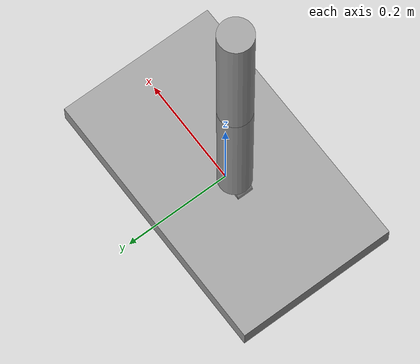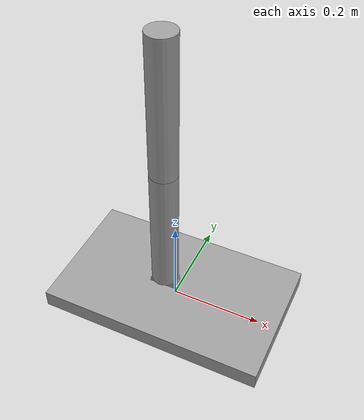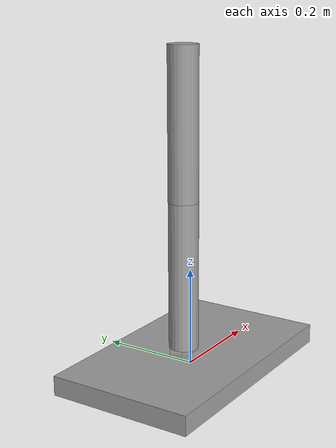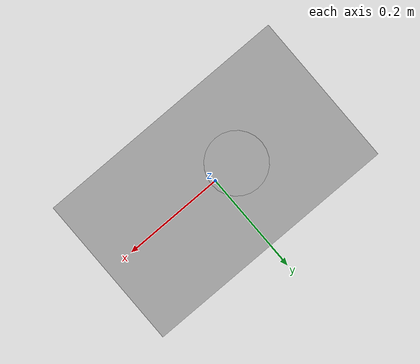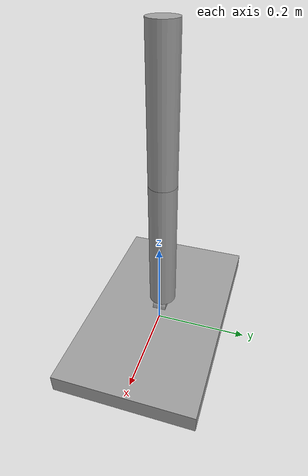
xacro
<robot xmlns:xacro="http://www.ros.org/wiki/xacro" name="stickbot_lowerleg_3dof" >
    <xacro:include filename="$(find stickbot_lowerleg_3dof)/models/stickbot_lowerleg_3dof/xacro/stickbot_lowerleg_3dof_base.xacro" />
    <stickbot_lowerleg_3dof />

    <link name="world">
        <!-- Virtual Link -->
        <inertial>
            <mass value="0.1"/>
            <origin rpy="0 0 0" xyz="0 0 1.2"/>
            <inertia ixx="8.33333333333e-05" ixy="0.0" ixz="0.0" iyy="8.33333333333e-05" iyz="0.0" izz="0.000125"/>
        </inertial>
    </link>

    <joint name="footOffset" type="fixed">
        <origin rpy="0 0 0" xyz="0 0 0"/>
        <axis xyz="0 0 1"/>
        <parent link="world"/>
        <child link="foot"/>
    </joint>

</robot>

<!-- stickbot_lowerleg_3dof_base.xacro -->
<robot name="stickbot_lowerleg_3dof" xmlns:controller="http://playerstage.sourceforge.net/gazebo/xmlschema/#controller" xmlns:interface="http://playerstage.sourceforge.net/gazebo/xmlschema/#interface" xmlns:sensor="http://playerstage.sourceforge.net/gazebo/xmlschema/#sensor" xmlns:xacro="http://playerstage.sourceforge.net/gazebo/xmlschema/#interface">

    <macro name="stickbot_lowerleg_3dof">
        <!-- Add the foot -->
        <link name="foot">
            <inertial>
                <mass value="10"/>
                <origin xyz="0 0 0.0"/>
                <inertia ixx="0.008667" ixy="0" ixz="0" iyy="0.008667" iyz="0" izz="0.01667"/>
            </inertial>
            <visual>
                <origin rpy="0 0 0 " xyz="0 0 0.01"/>
                <geometry name="foot">
                <box size="0.5 0.3 0.04"/> <!-- NOTE: These dimensions don't match inertial dimensions -->
                </geometry>
                <material name="grey">
                    <color rgba="0.627 0.627 0.627 1"/>
                </material>
            </visual>
            <collision>
                <origin rpy="0 0 0 " xyz="0 0 0.02"/>
                <geometry name="foot">
                    <box size="0.5 0.3 0.04"/>
                </geometry>
            </collision>
        </link>

        <!-- ankleRoll enables the ankle to roll -->
        <joint name="ankleRoll" type="continuous">
            <axis xyz="1 0 0"/>
            <origin rpy="0.0 0 0" xyz="-0.025 0 0.015"/>
            <parent link="foot"/>
            <child link="ankleLink"/>
            <limit effort="100" lower="-3.14" upper="3.14" velocity="1"/>
            <dynamics damping="0" friction="0" />
        </joint>

        <!-- ankleLink is the small link that directly attaches to the foot -->
        <link name="ankleLink">
            <inertial>
                <mass value="0.25"/>
                <origin xyz="0.0 0.0 0.015"/>
                <inertia ixx="0.00015" ixy="0" ixz="0" iyy="0.00015" iyz="0" izz="0.000225"/>
            </inertial>
            <visual>
                <origin rpy="1.507 0 0" xyz="0 0 0.015"/>
                <geometry name="ankleLink">
                    <cylinder radius="0.03" length="0.03"/>
                </geometry>
                <material name="grey">
                    <color rgba="0.627 0.627 0.627 1"/>
                </material>
            </visual>
            <collision>
                <origin rpy="1.507 0 0.0 " xyz="0 0 0.015"/>
                <geometry name="ankleLink">
                    <cylinder radius="0.03" length="0.03"/>
                </geometry>
              </collision>
        </link>

        <joint name="anklePitch" type="continuous">
            <axis xyz="0 1 0"/>
            <origin rpy="0 0 0" xyz="0 0 0.03"/>
            <parent link="ankleLink"/>
            <child link="lowerLeg"/>
            <limit effort="100" lower="-3.14" upper="3.14" velocity="1"/>
        </joint>
        <link name="lowerLeg">
            <inertial>
                <mass value="2.0"/>
                <origin xyz="-0.0 0 0.15"/>
                <inertia ixx="0.01545" ixy="0" ixz="0" iyy="0.01545" iyz="0" izz="0.0009"/>
            </inertial>
            <visual>
                <origin rpy="0 0 0 " xyz="0 0 0.15"/>
                <geometry name="lowerLeg">
                    <cylinder radius="0.03" length="0.3"/>
                </geometry>
                <material name="grey">
                    <color rgba="0.627 0.627 0.627 1"/>
                </material>
            </visual>
            <collision>
                <origin rpy="0 0 0 " xyz="0 0 0.15"/>
                <geometry name="lowerLeg">
                    <cylinder radius="0.03" length="0.3"/>
                </geometry>
            </collision>
        </link>

        <joint name="knee" type="continuous">
            <axis xyz="0 1 0"/>
            <origin rpy="0 0 0" xyz="0 0 0.3"/>
            <parent link="lowerLeg"/>
            <child link="upperleg"/>
            <limit effort="100" lower="-3.14" upper="3.14" velocity="1"/>
        </joint>

        <link name="upperleg">
            <inertial>
                <mass value="2.0"/>
                <origin xyz="-0.0 0 0.15"/>
                <inertia ixx="0.01545" ixy="0" ixz="0" iyy="0.01545" iyz="0" izz="0.0009"/>
            </inertial>
            <visual>
                <origin rpy="0 0 0 " xyz="0 0 0.15"/>
                <geometry name="upperleg">
                    <cylinder radius="0.03" length="0.3"/>
                </geometry>
                <material name="grey">
                    <color rgba="0.627 0.627 0.627 1"/>
                </material>
            </visual>
            <collision>
                <origin rpy="0 0 0 " xyz="0 0 0.3"/>
                <geometry name="upperleg">
                    <cylinder radius="0.03" length="0.3"/>
                </geometry>
            </collision>
        </link>

        <gazebo reference="ankleRoll">
            <provideFeedback value="true"/>
        </gazebo>
            <gazebo reference="anklePitch">
            <provideFeedback value="true"/>
        </gazebo>
        <gazebo reference="knee">
            <provideFeedback value="true"/>
        </gazebo>
    </macro>
</robot>
